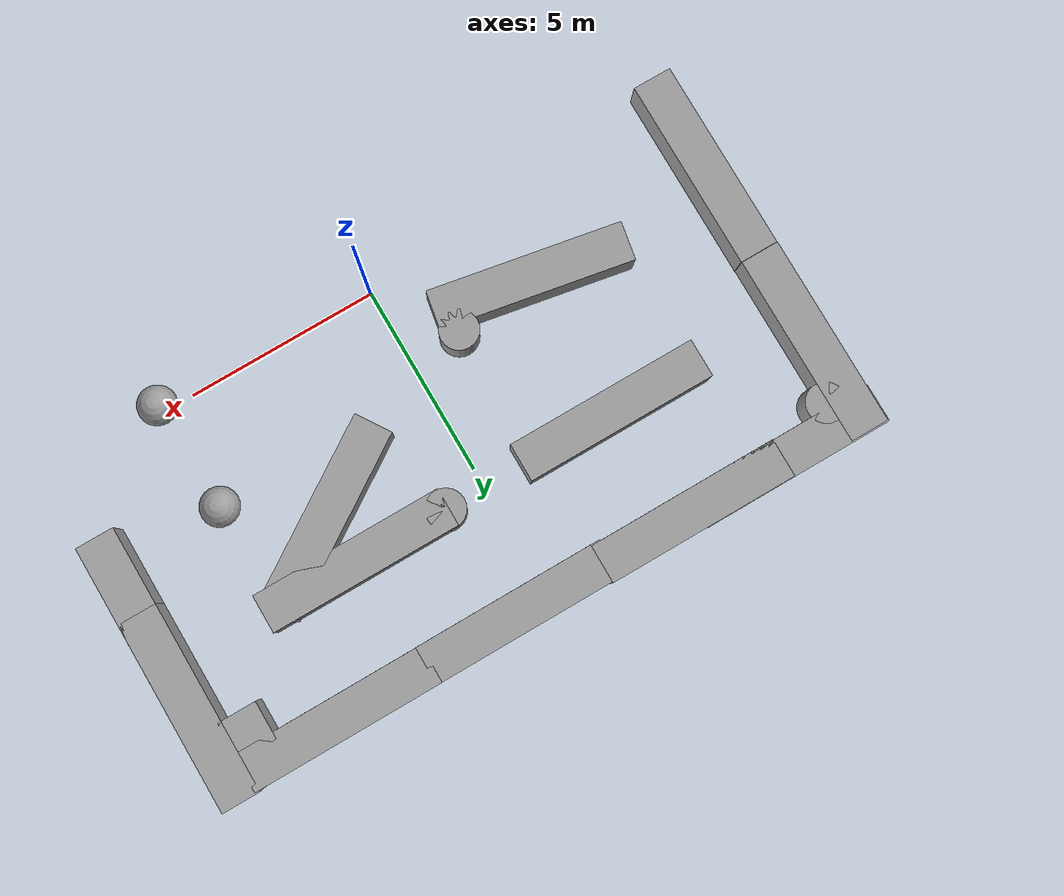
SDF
<sdf version="1.7">
 <model name="turtlebot3_world">
  <link name="turtlebot3_world::link_1">
   <inertial>
    <mass>4.98343</mass>
    <inertia><ixx>10.7287</ixx><ixy>0</ixy><ixz>0</ixz><iyy>0.830571</iyy><iyz>0</iyz><izz>10.7287</izz></inertia>
   </inertial>
   <pose>-8.50691 6.51028 0.5 0 -0 0</pose>
   <visual name="visual">
    <geometry><box><size>1 4.98342 1</size></box></geometry>
    <material>
     <lighting>1</lighting>
     <script><uri>file://media/materials/scripts/gazebo.material</uri><name>Gazebo/Grey</name></script>
     <shader type="pixel"/>
    </material>
   </visual>
   <collision name="collision">
    <geometry><box><size>1 4.98342 1</size></box></geometry>
    <surface>
     <friction>
      <ode><mu>1</mu><mu2>1</mu2><fdir1>0 0 0</fdir1><slip1>0</slip1><slip2>0</slip2></ode>
      <torsional>
       <coefficient>1</coefficient>
       <patch_radius>0</patch_radius>
       <surface_radius>0</surface_radius>
       <use_patch_radius>1</use_patch_radius>
       <ode><slip>0</slip></ode>
      </torsional>
     </friction>
     <bounce><restitution_coefficient>0</restitution_coefficient><threshold>1e+06</threshold></bounce>
     <contact>
      <collide_without_contact>0</collide_without_contact>
      <collide_without_contact_bitmask>1</collide_without_contact_bitmask>
      <collide_bitmask>1</collide_bitmask>
      <ode>
       <soft_cfm>0</soft_cfm>
       <soft_erp>0.2</soft_erp>
       <kp>1e+13</kp>
       <kd>1</kd>
       <max_vel>0.01</max_vel>
       <min_depth>0</min_depth>
      </ode>
      <bullet>
       <split_impulse>1</split_impulse>
       <split_impulse_penetration_threshold>-0.01</split_impulse_penetration_threshold>
       <soft_cfm>0</soft_cfm>
       <soft_erp>0.2</soft_erp>
       <kp>1e+13</kp>
       <kd>1</kd>
      </bullet>
     </contact>
    </surface>
   </collision>
  </link>
  <link name="link_1">
   <inertial>
    <mass>1</mass>
    <inertia><ixx>0.145833</ixx><ixy>0</ixy><ixz>0</ixz><iyy>0.145833</iyy><iyz>0</iyz><izz>0.125</izz></inertia>
   </inertial>
   <pose>-1.34414 2.00991 0.5 0 -0 0</pose>
   <visual name="visual">
    <geometry><cylinder><radius>0.5</radius><length>1</length></cylinder></geometry>
    <material>
     <lighting>1</lighting>
     <script><uri>file://media/materials/scripts/gazebo.material</uri><name>Gazebo/Grey</name></script>
     <shader type="pixel"/>
    </material>
   </visual>
   <collision name="collision">
    <geometry><cylinder><radius>0.5</radius><length>1</length></cylinder></geometry>
    <surface>
     <friction>
      <ode><mu>1</mu><mu2>1</mu2><fdir1>0 0 0</fdir1><slip1>0</slip1><slip2>0</slip2></ode>
      <torsional>
       <coefficient>1</coefficient>
       <patch_radius>0</patch_radius>
       <surface_radius>0</surface_radius>
       <use_patch_radius>1</use_patch_radius>
       <ode><slip>0</slip></ode>
      </torsional>
     </friction>
     <bounce><restitution_coefficient>0</restitution_coefficient><threshold>1e+06</threshold></bounce>
     <contact>
      <collide_without_contact>0</collide_without_contact>
      <collide_without_contact_bitmask>1</collide_without_contact_bitmask>
      <collide_bitmask>1</collide_bitmask>
      <ode>
       <soft_cfm>0</soft_cfm>
       <soft_erp>0.2</soft_erp>
       <kp>1e+13</kp>
       <kd>1</kd>
       <max_vel>0.01</max_vel>
       <min_depth>0</min_depth>
      </ode>
      <bullet>
       <split_impulse>1</split_impulse>
       <split_impulse_penetration_threshold>-0.01</split_impulse_penetration_threshold>
       <soft_cfm>0</soft_cfm>
       <soft_erp>0.2</soft_erp>
       <kp>1e+13</kp>
       <kd>1</kd>
      </bullet>
     </contact>
    </surface>
   </collision>
  </link>
  <link name="link_11">
   <inertial>
    <mass>1</mass>
    <inertia><ixx>0.1</ixx><ixy>0</ixy><ixz>0</ixz><iyy>0.1</iyy><iyz>0</iyz><izz>0.1</izz></inertia>
   </inertial>
   <pose>5.68871 2.74628 0.5 0 -0 0</pose>
   <visual name="visual">
    <geometry><sphere><radius>0.5</radius></sphere></geometry>
    <material>
     <lighting>1</lighting>
     <script><uri>file://media/materials/scripts/gazebo.material</uri><name>Gazebo/Grey</name></script>
     <shader type="pixel"/>
    </material>
   </visual>
   <collision name="collision">
    <geometry><sphere><radius>0.5</radius></sphere></geometry>
    <surface>
     <friction>
      <ode><mu>1</mu><mu2>1</mu2><fdir1>0 0 0</fdir1><slip1>0</slip1><slip2>0</slip2></ode>
      <torsional>
       <coefficient>1</coefficient>
       <patch_radius>0</patch_radius>
       <surface_radius>0</surface_radius>
       <use_patch_radius>1</use_patch_radius>
       <ode><slip>0</slip></ode>
      </torsional>
     </friction>
     <bounce><restitution_coefficient>0</restitution_coefficient><threshold>1e+06</threshold></bounce>
     <contact>
      <collide_without_contact>0</collide_without_contact>
      <collide_without_contact_bitmask>1</collide_without_contact_bitmask>
      <collide_bitmask>1</collide_bitmask>
      <ode>
       <soft_cfm>0</soft_cfm>
       <soft_erp>0.2</soft_erp>
       <kp>1e+13</kp>
       <kd>1</kd>
       <max_vel>0.01</max_vel>
       <min_depth>0</min_depth>
      </ode>
      <bullet>
       <split_impulse>1</split_impulse>
       <split_impulse_penetration_threshold>-0.01</split_impulse_penetration_threshold>
       <soft_cfm>0</soft_cfm>
       <soft_erp>0.2</soft_erp>
       <kp>1e+13</kp>
       <kd>1</kd>
      </bullet>
     </contact>
    </surface>
   </collision>
  </link>
  <link name="link_2">
   <inertial>
    <mass>1</mass>
    <inertia><ixx>0.145833</ixx><ixy>0</ixy><ixz>0</ixz><iyy>0.145833</iyy><iyz>0</iyz><izz>0.125</izz></inertia>
   </inertial>
   <pose>1.07519 5.54576 0.5 0 -0 0</pose>
   <visual name="visual">
    <geometry><cylinder><radius>0.5</radius><length>1</length></cylinder></geometry>
    <material>
     <lighting>1</lighting>
     <script><uri>file://media/materials/scripts/gazebo.material</uri><name>Gazebo/Grey</name></script>
     <shader type="pixel"/>
    </material>
   </visual>
   <collision name="collision">
    <geometry><cylinder><radius>0.5</radius><length>1</length></cylinder></geometry>
    <surface>
     <friction>
      <ode><mu>1</mu><mu2>1</mu2><fdir1>0 0 0</fdir1><slip1>0</slip1><slip2>0</slip2></ode>
      <torsional>
       <coefficient>1</coefficient>
       <patch_radius>0</patch_radius>
       <surface_radius>0</surface_radius>
       <use_patch_radius>1</use_patch_radius>
       <ode><slip>0</slip></ode>
      </torsional>
     </friction>
     <bounce><restitution_coefficient>0</restitution_coefficient><threshold>1e+06</threshold></bounce>
     <contact>
      <collide_without_contact>0</collide_without_contact>
      <collide_without_contact_bitmask>1</collide_without_contact_bitmask>
      <collide_bitmask>1</collide_bitmask>
      <ode>
       <soft_cfm>0</soft_cfm>
       <soft_erp>0.2</soft_erp>
       <kp>1e+13</kp>
       <kd>1</kd>
       <max_vel>0.01</max_vel>
       <min_depth>0</min_depth>
      </ode>
      <bullet>
       <split_impulse>1</split_impulse>
       <split_impulse_penetration_threshold>-0.01</split_impulse_penetration_threshold>
       <soft_cfm>0</soft_cfm>
       <soft_erp>0.2</soft_erp>
       <kp>1e+13</kp>
       <kd>1</kd>
      </bullet>
     </contact>
    </surface>
   </collision>
  </link>
  <link name="link_4">
   <inertial>
    <mass>1</mass>
    <inertia><ixx>0.1</ixx><ixy>0</ixy><ixz>0</ixz><iyy>0.1</iyy><iyz>0</iyz><izz>0.1</izz></inertia>
   </inertial>
   <pose>5.79355 -0.136695 0.5 0 -0 0</pose>
   <visual name="visual">
    <geometry><sphere><radius>0.5</radius></sphere></geometry>
    <material>
     <lighting>1</lighting>
     <script><uri>file://media/materials/scripts/gazebo.material</uri><name>Gazebo/Grey</name></script>
     <shader type="pixel"/>
    </material>
   </visual>
   <collision name="collision">
    <geometry><sphere><radius>0.5</radius></sphere></geometry>
    <surface>
     <friction>
      <ode><mu>1</mu><mu2>1</mu2><fdir1>0 0 0</fdir1><slip1>0</slip1><slip2>0</slip2></ode>
      <torsional>
       <coefficient>1</coefficient>
       <patch_radius>0</patch_radius>
       <surface_radius>0</surface_radius>
       <use_patch_radius>1</use_patch_radius>
       <ode><slip>0</slip></ode>
      </torsional>
     </friction>
     <bounce><restitution_coefficient>0</restitution_coefficient><threshold>1e+06</threshold></bounce>
     <contact>
      <collide_without_contact>0</collide_without_contact>
      <collide_without_contact_bitmask>1</collide_without_contact_bitmask>
      <collide_bitmask>1</collide_bitmask>
      <ode>
       <soft_cfm>0</soft_cfm>
       <soft_erp>0.2</soft_erp>
       <kp>1e+13</kp>
       <kd>1</kd>
       <max_vel>0.01</max_vel>
       <min_depth>0</min_depth>
      </ode>
      <bullet>
       <split_impulse>1</split_impulse>
       <split_impulse_penetration_threshold>-0.01</split_impulse_penetration_threshold>
       <soft_cfm>0</soft_cfm>
       <soft_erp>0.2</soft_erp>
       <kp>1e+13</kp>
       <kd>1</kd>
      </bullet>
     </contact>
    </surface>
   </collision>
  </link>
  <link name="link_6">
   <inertial>
    <mass>1</mass>
    <inertia>
     <ixx>0.166667</ixx>
     <ixy>0</ixy>
     <ixz>0</ixz>
     <iyy>0.166667</iyy>
     <iyz>0</iyz>
     <izz>0.166667</izz>
    </inertia>
   </inertial>
   <pose>7.62115 7.66766 0.5 0 -0 0</pose>
   <visual name="visual">
    <geometry><box><size>1 1 1</size></box></geometry>
    <material>
     <lighting>1</lighting>
     <script><uri>file://media/materials/scripts/gazebo.material</uri><name>Gazebo/Grey</name></script>
     <shader type="pixel"/>
    </material>
   </visual>
   <collision name="collision">
    <geometry><box><size>1 1 1</size></box></geometry>
    <surface>
     <friction>
      <ode><mu>1</mu><mu2>1</mu2><fdir1>0 0 0</fdir1><slip1>0</slip1><slip2>0</slip2></ode>
      <torsional>
       <coefficient>1</coefficient>
       <patch_radius>0</patch_radius>
       <surface_radius>0</surface_radius>
       <use_patch_radius>1</use_patch_radius>
       <ode><slip>0</slip></ode>
      </torsional>
     </friction>
     <bounce><restitution_coefficient>0</restitution_coefficient><threshold>1e+06</threshold></bounce>
     <contact>
      <collide_without_contact>0</collide_without_contact>
      <collide_without_contact_bitmask>1</collide_without_contact_bitmask>
      <collide_bitmask>1</collide_bitmask>
      <ode>
       <soft_cfm>0</soft_cfm>
       <soft_erp>0.2</soft_erp>
       <kp>1e+13</kp>
       <kd>1</kd>
       <max_vel>0.01</max_vel>
       <min_depth>0</min_depth>
      </ode>
      <bullet>
       <split_impulse>1</split_impulse>
       <split_impulse_penetration_threshold>-0.01</split_impulse_penetration_threshold>
       <soft_cfm>0</soft_cfm>
       <soft_erp>0.2</soft_erp>
       <kp>1e+13</kp>
       <kd>1</kd>
      </bullet>
     </contact>
    </surface>
   </collision>
  </link>
  <link name="link_7">
   <inertial>
    <mass>1</mass>
    <inertia><ixx>0.145833</ixx><ixy>0</ixy><ixz>0</ixz><iyy>0.145833</iyy><iyz>0</iyz><izz>0.125</izz></inertia>
   </inertial>
   <pose>-7.96406 7.91542 0.5 0 -0 0</pose>
   <visual name="visual">
    <geometry><cylinder><radius>0.5</radius><length>1</length></cylinder></geometry>
    <material>
     <lighting>1</lighting>
     <script><uri>file://media/materials/scripts/gazebo.material</uri><name>Gazebo/Grey</name></script>
     <shader type="pixel"/>
    </material>
   </visual>
   <collision name="collision">
    <geometry><cylinder><radius>0.5</radius><length>1</length></cylinder></geometry>
    <surface>
     <friction>
      <ode><mu>1</mu><mu2>1</mu2><fdir1>0 0 0</fdir1><slip1>0</slip1><slip2>0</slip2></ode>
      <torsional>
       <coefficient>1</coefficient>
       <patch_radius>0</patch_radius>
       <surface_radius>0</surface_radius>
       <use_patch_radius>1</use_patch_radius>
       <ode><slip>0</slip></ode>
      </torsional>
     </friction>
     <bounce><restitution_coefficient>0</restitution_coefficient><threshold>1e+06</threshold></bounce>
     <contact>
      <collide_without_contact>0</collide_without_contact>
      <collide_without_contact_bitmask>1</collide_without_contact_bitmask>
      <collide_bitmask>1</collide_bitmask>
      <ode>
       <soft_cfm>0</soft_cfm>
       <soft_erp>0.2</soft_erp>
       <kp>1e+13</kp>
       <kd>1</kd>
       <max_vel>0.01</max_vel>
       <min_depth>0</min_depth>
      </ode>
      <bullet>
       <split_impulse>1</split_impulse>
       <split_impulse_penetration_threshold>-0.01</split_impulse_penetration_threshold>
       <soft_cfm>0</soft_cfm>
       <soft_erp>0.2</soft_erp>
       <kp>1e+13</kp>
       <kd>1</kd>
      </bullet>
     </contact>
    </surface>
   </collision>
  </link>
  <link name="turtlebot3_world::link_1_clone">
   <inertial>
    <mass>4.98343</mass>
    <inertia><ixx>10.7287</ixx><ixy>0</ixy><ixz>0</ixz><iyy>0.830571</iyy><iyz>0</iyz><izz>10.7287</izz></inertia>
   </inertial>
   <pose>-8.49911 1.51651 0.5 0 -0 0</pose>
   <visual name="visual">
    <geometry><box><size>1 4.98342 1</size></box></geometry>
    <material>
     <lighting>1</lighting>
     <script><uri>file://media/materials/scripts/gazebo.material</uri><name>Gazebo/Grey</name></script>
     <shader type="pixel"/>
    </material>
   </visual>
   <collision name="collision">
    <geometry><box><size>1 4.98342 1</size></box></geometry>
    <surface>
     <friction>
      <ode><mu>1</mu><mu2>1</mu2><fdir1>0 0 0</fdir1><slip1>0</slip1><slip2>0</slip2></ode>
      <torsional>
       <coefficient>1</coefficient>
       <patch_radius>0</patch_radius>
       <surface_radius>0</surface_radius>
       <use_patch_radius>1</use_patch_radius>
       <ode><slip>0</slip></ode>
      </torsional>
     </friction>
     <bounce><restitution_coefficient>0</restitution_coefficient><threshold>1e+06</threshold></bounce>
     <contact>
      <collide_without_contact>0</collide_without_contact>
      <collide_without_contact_bitmask>1</collide_without_contact_bitmask>
      <collide_bitmask>1</collide_bitmask>
      <ode>
       <soft_cfm>0</soft_cfm>
       <soft_erp>0.2</soft_erp>
       <kp>1e+13</kp>
       <kd>1</kd>
       <max_vel>0.01</max_vel>
       <min_depth>0</min_depth>
      </ode>
      <bullet>
       <split_impulse>1</split_impulse>
       <split_impulse_penetration_threshold>-0.01</split_impulse_penetration_threshold>
       <soft_cfm>0</soft_cfm>
       <soft_erp>0.2</soft_erp>
       <kp>1e+13</kp>
       <kd>1</kd>
      </bullet>
     </contact>
    </surface>
   </collision>
  </link>
  <link name="turtlebot3_world::link_1_clone_1_clone_1">
   <inertial>
    <mass>4.98343</mass>
    <inertia><ixx>10.7287</ixx><ixy>0</ixy><ixz>0</ixz><iyy>0.830571</iyy><iyz>0</iyz><izz>10.7287</izz></inertia>
   </inertial>
   <pose>8.53419 4.4655 0.5 0 -0 0</pose>
   <visual name="visual">
    <geometry><box><size>1 4.98342 1</size></box></geometry>
    <material>
     <lighting>1</lighting>
     <script><uri>file://media/materials/scripts/gazebo.material</uri><name>Gazebo/Grey</name></script>
     <shader type="pixel"/>
    </material>
   </visual>
   <collision name="collision">
    <geometry><box><size>1 4.98342 1</size></box></geometry>
    <surface>
     <friction>
      <ode><mu>1</mu><mu2>1</mu2><fdir1>0 0 0</fdir1><slip1>0</slip1><slip2>0</slip2></ode>
      <torsional>
       <coefficient>1</coefficient>
       <patch_radius>0</patch_radius>
       <surface_radius>0</surface_radius>
       <use_patch_radius>1</use_patch_radius>
       <ode><slip>0</slip></ode>
      </torsional>
     </friction>
     <bounce><restitution_coefficient>0</restitution_coefficient><threshold>1e+06</threshold></bounce>
     <contact>
      <collide_without_contact>0</collide_without_contact>
      <collide_without_contact_bitmask>1</collide_without_contact_bitmask>
      <collide_bitmask>1</collide_bitmask>
      <ode>
       <soft_cfm>0</soft_cfm>
       <soft_erp>0.2</soft_erp>
       <kp>1e+13</kp>
       <kd>1</kd>
       <max_vel>0.01</max_vel>
       <min_depth>0</min_depth>
      </ode>
      <bullet>
       <split_impulse>1</split_impulse>
       <split_impulse_penetration_threshold>-0.01</split_impulse_penetration_threshold>
       <soft_cfm>0</soft_cfm>
       <soft_erp>0.2</soft_erp>
       <kp>1e+13</kp>
       <kd>1</kd>
      </bullet>
     </contact>
    </surface>
   </collision>
  </link>
  <link name="turtlebot3_world::link_1_clone_1_clone_2">
   <inertial>
    <mass>4.98343</mass>
    <inertia><ixx>10.7287</ixx><ixy>0</ixy><ixz>0</ixz><iyy>0.830571</iyy><iyz>0</iyz><izz>10.7287</izz></inertia>
   </inertial>
   <pose>8.53365 6.52662 0.5 0 -0 0</pose>
   <visual name="visual">
    <geometry><box><size>1 4.98342 1</size></box></geometry>
    <material>
     <lighting>1</lighting>
     <script><uri>file://media/materials/scripts/gazebo.material</uri><name>Gazebo/Grey</name></script>
     <shader type="pixel"/>
    </material>
   </visual>
   <collision name="collision">
    <geometry><box><size>1 4.98342 1</size></box></geometry>
    <surface>
     <friction>
      <ode><mu>1</mu><mu2>1</mu2><fdir1>0 0 0</fdir1><slip1>0</slip1><slip2>0</slip2></ode>
      <torsional>
       <coefficient>1</coefficient>
       <patch_radius>0</patch_radius>
       <surface_radius>0</surface_radius>
       <use_patch_radius>1</use_patch_radius>
       <ode><slip>0</slip></ode>
      </torsional>
     </friction>
     <bounce><restitution_coefficient>0</restitution_coefficient><threshold>1e+06</threshold></bounce>
     <contact>
      <collide_without_contact>0</collide_without_contact>
      <collide_without_contact_bitmask>1</collide_without_contact_bitmask>
      <collide_bitmask>1</collide_bitmask>
      <ode>
       <soft_cfm>0</soft_cfm>
       <soft_erp>0.2</soft_erp>
       <kp>1e+13</kp>
       <kd>1</kd>
       <max_vel>0.01</max_vel>
       <min_depth>0</min_depth>
      </ode>
      <bullet>
       <split_impulse>1</split_impulse>
       <split_impulse_penetration_threshold>-0.01</split_impulse_penetration_threshold>
       <soft_cfm>0</soft_cfm>
       <soft_erp>0.2</soft_erp>
       <kp>1e+13</kp>
       <kd>1</kd>
      </bullet>
     </contact>
    </surface>
   </collision>
  </link>
  <link name="turtlebot3_world::link_1_clone_2_clone_1_clone">
   <inertial>
    <mass>4.98343</mass>
    <inertia><ixx>10.7287</ixx><ixy>0</ixy><ixz>0</ixz><iyy>0.830571</iyy><iyz>0</iyz><izz>10.7287</izz></inertia>
   </inertial>
   <pose>5.66086 8.48348 0.5 0 -0 1.56958</pose>
   <visual name="visual">
    <geometry><box><size>1 4.98342 1</size></box></geometry>
    <material>
     <lighting>1</lighting>
     <script><uri>file://media/materials/scripts/gazebo.material</uri><name>Gazebo/Grey</name></script>
     <shader type="pixel"/>
    </material>
   </visual>
   <collision name="collision">
    <geometry><box><size>1 4.98342 1</size></box></geometry>
    <surface>
     <friction>
      <ode><mu>1</mu><mu2>1</mu2><fdir1>0 0 0</fdir1><slip1>0</slip1><slip2>0</slip2></ode>
      <torsional>
       <coefficient>1</coefficient>
       <patch_radius>0</patch_radius>
       <surface_radius>0</surface_radius>
       <use_patch_radius>1</use_patch_radius>
       <ode><slip>0</slip></ode>
      </torsional>
     </friction>
     <bounce><restitution_coefficient>0</restitution_coefficient><threshold>1e+06</threshold></bounce>
     <contact>
      <collide_without_contact>0</collide_without_contact>
      <collide_without_contact_bitmask>1</collide_without_contact_bitmask>
      <collide_bitmask>1</collide_bitmask>
      <ode>
       <soft_cfm>0</soft_cfm>
       <soft_erp>0.2</soft_erp>
       <kp>1e+13</kp>
       <kd>1</kd>
       <max_vel>0.01</max_vel>
       <min_depth>0</min_depth>
      </ode>
      <bullet>
       <split_impulse>1</split_impulse>
       <split_impulse_penetration_threshold>-0.01</split_impulse_penetration_threshold>
       <soft_cfm>0</soft_cfm>
       <soft_erp>0.2</soft_erp>
       <kp>1e+13</kp>
       <kd>1</kd>
      </bullet>
     </contact>
    </surface>
   </collision>
  </link>
  <link name="turtlebot3_world::link_1_clone_2_clone_1_clone_0">
   <inertial>
    <mass>4.98343</mass>
    <inertia><ixx>10.7287</ixx><ixy>0</ixy><ixz>0</ixz><iyy>0.830571</iyy><iyz>0</iyz><izz>10.7287</izz></inertia>
   </inertial>
   <pose>0.816484 8.48272 0.5 0 -0 1.56958</pose>
   <visual name="visual">
    <geometry><box><size>1 4.98342 1</size></box></geometry>
    <material>
     <lighting>1</lighting>
     <script><uri>file://media/materials/scripts/gazebo.material</uri><name>Gazebo/Grey</name></script>
     <shader type="pixel"/>
    </material>
   </visual>
   <collision name="collision">
    <geometry><box><size>1 4.98342 1</size></box></geometry>
    <surface>
     <friction>
      <ode><mu>1</mu><mu2>1</mu2><fdir1>0 0 0</fdir1><slip1>0</slip1><slip2>0</slip2></ode>
      <torsional>
       <coefficient>1</coefficient>
       <patch_radius>0</patch_radius>
       <surface_radius>0</surface_radius>
       <use_patch_radius>1</use_patch_radius>
       <ode><slip>0</slip></ode>
      </torsional>
     </friction>
     <bounce><restitution_coefficient>0</restitution_coefficient><threshold>1e+06</threshold></bounce>
     <contact>
      <collide_without_contact>0</collide_without_contact>
      <collide_without_contact_bitmask>1</collide_without_contact_bitmask>
      <collide_bitmask>1</collide_bitmask>
      <ode>
       <soft_cfm>0</soft_cfm>
       <soft_erp>0.2</soft_erp>
       <kp>1e+13</kp>
       <kd>1</kd>
       <max_vel>0.01</max_vel>
       <min_depth>0</min_depth>
      </ode>
      <bullet>
       <split_impulse>1</split_impulse>
       <split_impulse_penetration_threshold>-0.01</split_impulse_penetration_threshold>
       <soft_cfm>0</soft_cfm>
       <soft_erp>0.2</soft_erp>
       <kp>1e+13</kp>
       <kd>1</kd>
      </bullet>
     </contact>
    </surface>
   </collision>
  </link>
  <link name="turtlebot3_world::link_1_clone_2_clone_1_clone_1">
   <inertial>
    <mass>4.98343</mass>
    <inertia><ixx>10.7287</ixx><ixy>0</ixy><ixz>0</ixz><iyy>0.830571</iyy><iyz>0</iyz><izz>10.7287</izz></inertia>
   </inertial>
   <pose>-3.92004 8.51988 0.5 0 -0 1.56958</pose>
   <visual name="visual">
    <geometry><box><size>1 4.98342 1</size></box></geometry>
    <material>
     <lighting>1</lighting>
     <script><uri>file://media/materials/scripts/gazebo.material</uri><name>Gazebo/Grey</name></script>
     <shader type="pixel"/>
    </material>
   </visual>
   <collision name="collision">
    <geometry><box><size>1 4.98342 1</size></box></geometry>
    <surface>
     <friction>
      <ode><mu>1</mu><mu2>1</mu2><fdir1>0 0 0</fdir1><slip1>0</slip1><slip2>0</slip2></ode>
      <torsional>
       <coefficient>1</coefficient>
       <patch_radius>0</patch_radius>
       <surface_radius>0</surface_radius>
       <use_patch_radius>1</use_patch_radius>
       <ode><slip>0</slip></ode>
      </torsional>
     </friction>
     <bounce><restitution_coefficient>0</restitution_coefficient><threshold>1e+06</threshold></bounce>
     <contact>
      <collide_without_contact>0</collide_without_contact>
      <collide_without_contact_bitmask>1</collide_without_contact_bitmask>
      <collide_bitmask>1</collide_bitmask>
      <ode>
       <soft_cfm>0</soft_cfm>
       <soft_erp>0.2</soft_erp>
       <kp>1e+13</kp>
       <kd>1</kd>
       <max_vel>0.01</max_vel>
       <min_depth>0</min_depth>
      </ode>
      <bullet>
       <split_impulse>1</split_impulse>
       <split_impulse_penetration_threshold>-0.01</split_impulse_penetration_threshold>
       <soft_cfm>0</soft_cfm>
       <soft_erp>0.2</soft_erp>
       <kp>1e+13</kp>
       <kd>1</kd>
      </bullet>
     </contact>
    </surface>
   </collision>
  </link>
  <link name="turtlebot3_world::link_1_clone_2_clone_1_clone_2">
   <inertial>
    <mass>4.98343</mass>
    <inertia><ixx>10.7287</ixx><ixy>0</ixy><ixz>0</ixz><iyy>0.830571</iyy><iyz>0</iyz><izz>10.7287</izz></inertia>
   </inertial>
   <pose>-6.53616 8.53776 0.5 0 -0 1.56958</pose>
   <visual name="visual">
    <geometry><box><size>1 4.98342 1</size></box></geometry>
    <material>
     <lighting>1</lighting>
     <script><uri>file://media/materials/scripts/gazebo.material</uri><name>Gazebo/Grey</name></script>
     <shader type="pixel"/>
    </material>
   </visual>
   <collision name="collision">
    <geometry><box><size>1 4.98342 1</size></box></geometry>
    <surface>
     <friction>
      <ode><mu>1</mu><mu2>1</mu2><fdir1>0 0 0</fdir1><slip1>0</slip1><slip2>0</slip2></ode>
      <torsional>
       <coefficient>1</coefficient>
       <patch_radius>0</patch_radius>
       <surface_radius>0</surface_radius>
       <use_patch_radius>1</use_patch_radius>
       <ode><slip>0</slip></ode>
      </torsional>
     </friction>
     <bounce><restitution_coefficient>0</restitution_coefficient><threshold>1e+06</threshold></bounce>
     <contact>
      <collide_without_contact>0</collide_without_contact>
      <collide_without_contact_bitmask>1</collide_without_contact_bitmask>
      <collide_bitmask>1</collide_bitmask>
      <ode>
       <soft_cfm>0</soft_cfm>
       <soft_erp>0.2</soft_erp>
       <kp>1e+13</kp>
       <kd>1</kd>
       <max_vel>0.01</max_vel>
       <min_depth>0</min_depth>
      </ode>
      <bullet>
       <split_impulse>1</split_impulse>
       <split_impulse_penetration_threshold>-0.01</split_impulse_penetration_threshold>
       <soft_cfm>0</soft_cfm>
       <soft_erp>0.2</soft_erp>
       <kp>1e+13</kp>
       <kd>1</kd>
      </bullet>
     </contact>
    </surface>
   </collision>
  </link>
  <link name="turtlebot3_world::link_1_clone_2_clone_1_clone_3">
   <inertial>
    <mass>4.98343</mass>
    <inertia><ixx>10.7287</ixx><ixy>0</ixy><ixz>0</ixz><iyy>0.830571</iyy><iyz>0</iyz><izz>10.7287</izz></inertia>
   </inertial>
   <pose>-3.49231 5.50164 0.5 0 -0 1.56958</pose>
   <visual name="visual">
    <geometry><box><size>1 4.98342 1</size></box></geometry>
    <material>
     <lighting>1</lighting>
     <script><uri>file://media/materials/scripts/gazebo.material</uri><name>Gazebo/Grey</name></script>
     <shader type="pixel"/>
    </material>
   </visual>
   <collision name="collision">
    <geometry><box><size>1 4.98342 1</size></box></geometry>
    <surface>
     <friction>
      <ode><mu>1</mu><mu2>1</mu2><fdir1>0 0 0</fdir1><slip1>0</slip1><slip2>0</slip2></ode>
      <torsional>
       <coefficient>1</coefficient>
       <patch_radius>0</patch_radius>
       <surface_radius>0</surface_radius>
       <use_patch_radius>1</use_patch_radius>
       <ode><slip>0</slip></ode>
      </torsional>
     </friction>
     <bounce><restitution_coefficient>0</restitution_coefficient><threshold>1e+06</threshold></bounce>
     <contact>
      <collide_without_contact>0</collide_without_contact>
      <collide_without_contact_bitmask>1</collide_without_contact_bitmask>
      <collide_bitmask>1</collide_bitmask>
      <ode>
       <soft_cfm>0</soft_cfm>
       <soft_erp>0.2</soft_erp>
       <kp>1e+13</kp>
       <kd>1</kd>
       <max_vel>0.01</max_vel>
       <min_depth>0</min_depth>
      </ode>
      <bullet>
       <split_impulse>1</split_impulse>
       <split_impulse_penetration_threshold>-0.01</split_impulse_penetration_threshold>
       <soft_cfm>0</soft_cfm>
       <soft_erp>0.2</soft_erp>
       <kp>1e+13</kp>
       <kd>1</kd>
      </bullet>
     </contact>
    </surface>
   </collision>
  </link>
  <link name="turtlebot3_world::link_1_clone_2_clone_1_clone_4">
   <inertial>
    <mass>4.98343</mass>
    <inertia><ixx>10.7287</ixx><ixy>0</ixy><ixz>0</ixz><iyy>0.830571</iyy><iyz>0</iyz><izz>10.7287</izz></inertia>
   </inertial>
   <pose>3.49755 5.52347 0.5 0 -0 1.56958</pose>
   <visual name="visual">
    <geometry><box><size>1 4.98342 1</size></box></geometry>
    <material>
     <lighting>1</lighting>
     <script><uri>file://media/materials/scripts/gazebo.material</uri><name>Gazebo/Grey</name></script>
     <shader type="pixel"/>
    </material>
   </visual>
   <collision name="collision">
    <geometry><box><size>1 4.98342 1</size></box></geometry>
    <surface>
     <friction>
      <ode><mu>1</mu><mu2>1</mu2><fdir1>0 0 0</fdir1><slip1>0</slip1><slip2>0</slip2></ode>
      <torsional>
       <coefficient>1</coefficient>
       <patch_radius>0</patch_radius>
       <surface_radius>0</surface_radius>
       <use_patch_radius>1</use_patch_radius>
       <ode><slip>0</slip></ode>
      </torsional>
     </friction>
     <bounce><restitution_coefficient>0</restitution_coefficient><threshold>1e+06</threshold></bounce>
     <contact>
      <collide_without_contact>0</collide_without_contact>
      <collide_without_contact_bitmask>1</collide_without_contact_bitmask>
      <collide_bitmask>1</collide_bitmask>
      <ode>
       <soft_cfm>0</soft_cfm>
       <soft_erp>0.2</soft_erp>
       <kp>1e+13</kp>
       <kd>1</kd>
       <max_vel>0.01</max_vel>
       <min_depth>0</min_depth>
      </ode>
      <bullet>
       <split_impulse>1</split_impulse>
       <split_impulse_penetration_threshold>-0.01</split_impulse_penetration_threshold>
       <soft_cfm>0</soft_cfm>
       <soft_erp>0.2</soft_erp>
       <kp>1e+13</kp>
       <kd>1</kd>
      </bullet>
     </contact>
    </surface>
   </collision>
  </link>
  <link name="turtlebot3_world::link_1_clone_2_clone_1_clone_5">
   <inertial>
    <mass>4.98343</mass>
    <inertia><ixx>10.7287</ixx><ixy>0</ixy><ixz>0</ixz><iyy>0.830571</iyy><iyz>0</iyz><izz>10.7287</izz></inertia>
   </inertial>
   <pose>3.61792 4.2783 0.5 0 -0 2.14848</pose>
   <visual name="visual">
    <geometry><box><size>1 4.98342 1</size></box></geometry>
    <material>
     <lighting>1</lighting>
     <script><uri>file://media/materials/scripts/gazebo.material</uri><name>Gazebo/Grey</name></script>
     <shader type="pixel"/>
    </material>
   </visual>
   <collision name="collision">
    <geometry><box><size>1 4.98342 1</size></box></geometry>
    <surface>
     <friction>
      <ode><mu>1</mu><mu2>1</mu2><fdir1>0 0 0</fdir1><slip1>0</slip1><slip2>0</slip2></ode>
      <torsional>
       <coefficient>1</coefficient>
       <patch_radius>0</patch_radius>
       <surface_radius>0</surface_radius>
       <use_patch_radius>1</use_patch_radius>
       <ode><slip>0</slip></ode>
      </torsional>
     </friction>
     <bounce><restitution_coefficient>0</restitution_coefficient><threshold>1e+06</threshold></bounce>
     <contact>
      <collide_without_contact>0</collide_without_contact>
      <collide_without_contact_bitmask>1</collide_without_contact_bitmask>
      <collide_bitmask>1</collide_bitmask>
      <ode>
       <soft_cfm>0</soft_cfm>
       <soft_erp>0.2</soft_erp>
       <kp>1e+13</kp>
       <kd>1</kd>
       <max_vel>0.01</max_vel>
       <min_depth>0</min_depth>
      </ode>
      <bullet>
       <split_impulse>1</split_impulse>
       <split_impulse_penetration_threshold>-0.01</split_impulse_penetration_threshold>
       <soft_cfm>0</soft_cfm>
       <soft_erp>0.2</soft_erp>
       <kp>1e+13</kp>
       <kd>1</kd>
      </bullet>
     </contact>
    </surface>
   </collision>
  </link>
  <link name="turtlebot3_world::link_1_clone_2_clone_1_clone_6">
   <inertial>
    <mass>4.98343</mass>
    <inertia><ixx>10.7287</ixx><ixy>0</ixy><ixz>0</ixz><iyy>0.830571</iyy><iyz>0</iyz><izz>10.7287</izz></inertia>
   </inertial>
   <pose>-3.48925 1.73483 0.5 0 -0 1.3901</pose>
   <visual name="visual">
    <geometry><box><size>1 4.98342 1</size></box></geometry>
    <material>
     <lighting>1</lighting>
     <script><uri>file://media/materials/scripts/gazebo.material</uri><name>Gazebo/Grey</name></script>
     <shader type="pixel"/>
    </material>
   </visual>
   <collision name="collision">
    <geometry><box><size>1 4.98342 1</size></box></geometry>
    <surface>
     <friction>
      <ode><mu>1</mu><mu2>1</mu2><fdir1>0 0 0</fdir1><slip1>0</slip1><slip2>0</slip2></ode>
      <torsional>
       <coefficient>1</coefficient>
       <patch_radius>0</patch_radius>
       <surface_radius>0</surface_radius>
       <use_patch_radius>1</use_patch_radius>
       <ode><slip>0</slip></ode>
      </torsional>
     </friction>
     <bounce><restitution_coefficient>0</restitution_coefficient><threshold>1e+06</threshold></bounce>
     <contact>
      <collide_without_contact>0</collide_without_contact>
      <collide_without_contact_bitmask>1</collide_without_contact_bitmask>
      <collide_bitmask>1</collide_bitmask>
      <ode>
       <soft_cfm>0</soft_cfm>
       <soft_erp>0.2</soft_erp>
       <kp>1e+13</kp>
       <kd>1</kd>
       <max_vel>0.01</max_vel>
       <min_depth>0</min_depth>
      </ode>
      <bullet>
       <split_impulse>1</split_impulse>
       <split_impulse_penetration_threshold>-0.01</split_impulse_penetration_threshold>
       <soft_cfm>0</soft_cfm>
       <soft_erp>0.2</soft_erp>
       <kp>1e+13</kp>
       <kd>1</kd>
      </bullet>
     </contact>
    </surface>
   </collision>
  </link>
  <static>1</static>
 </model>
</sdf>
